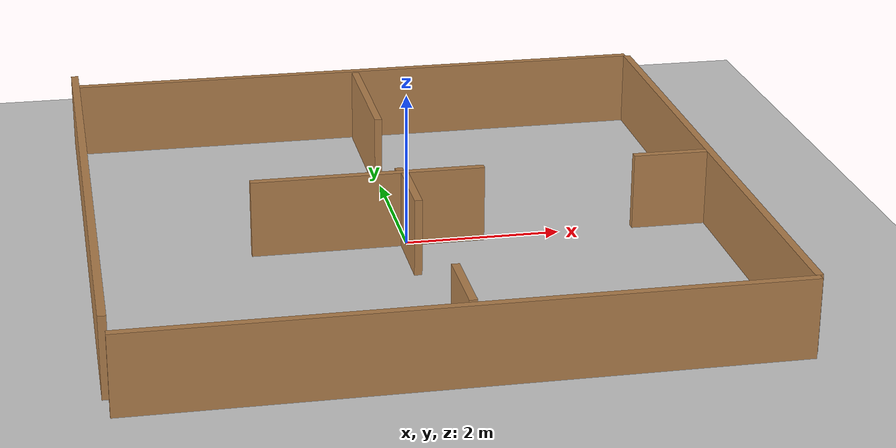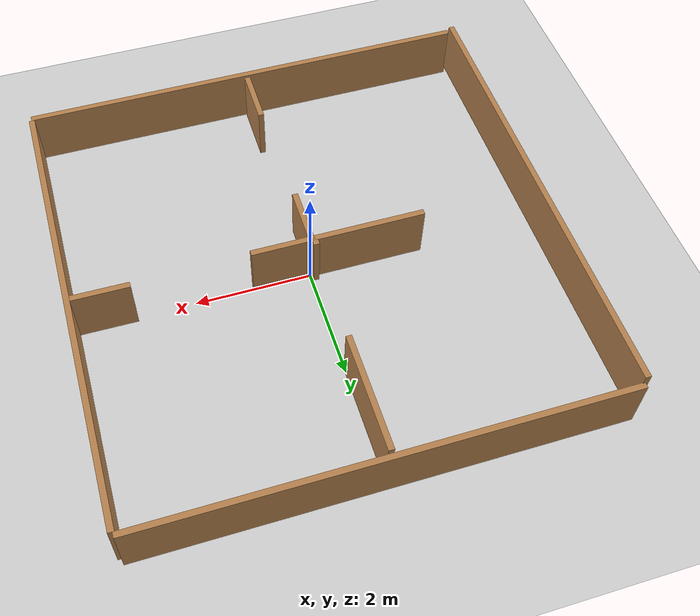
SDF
<sdf version="1.7">
 <world name="default">
  <plugin name="gazebo_ros_state" filename="libgazebo_ros_state.so"/>
  <light name="sun" type="directional">
   <pose>0 0 10 0 -0 0</pose>
   <diffuse>0.8 0.8 0.8 1</diffuse>
   <specular>0.2 0.2 0.2 1</specular>
   <attenuation>
    <range>1000</range>
    <constant>0.9</constant>
    <linear>0.01</linear>
    <quadratic>0.001</quadratic>
   </attenuation>
   <direction>-0.5 0.1 -0.9</direction>
   <spot><inner_angle>0</inner_angle><outer_angle>0</outer_angle><falloff>0</falloff></spot>
  </light>
  <model name="ground_plane">
   <static>1</static>
   <link name="link">
    <collision name="collision">
     <geometry><plane><normal>0 0 1</normal><size>100 100</size></plane></geometry>
     <surface><friction><ode><mu>100</mu><mu2>50</mu2></ode></friction></surface>
    </collision>
    <visual name="visual">
     <cast_shadows>0</cast_shadows>
     <geometry><plane><normal>0 0 1</normal><size>100 100</size></plane></geometry>
     <material>
      <script><uri>model://media/materials/scripts/gazebo.material</uri><name>Gazebo/Grey</name></script>
     </material>
    </visual>
   </link>
  </model>
  <gravity>0 0 -9.8</gravity>
  <magnetic_field>6e-06 2.3e-05 -4.2e-05</magnetic_field>
  <atmosphere type="adiabatic"/>
  <physics type="ode">
   <max_step_size>0.001</max_step_size>
   <real_time_factor>1</real_time_factor>
   <real_time_update_rate>1000</real_time_update_rate>
  </physics>
  <scene><ambient>0.4 0.4 0.4 1</ambient><background>0.7 0.7 0.7 1</background><shadows>1</shadows></scene>
  <spherical_coordinates>
   <surface_model>EARTH_WGS84</surface_model>
   <latitude_deg>0</latitude_deg>
   <longitude_deg>0</longitude_deg>
   <elevation>0</elevation>
   <heading_deg>0</heading_deg>
  </spherical_coordinates>
  <model name="wood_wall_h_mid_4x4">
   <link name="link">
    <pose>-0.834285 -0.35781 0.499994 0 -0 0.146415</pose>
    <inertial>
     <mass>0.5167</mass>
     <inertia>
      <ixx>0.00086117</ixx>
      <ixy>0</ixy>
      <ixz>0</ixz>
      <iyy>0.00086117</iyy>
      <iyz>0</iyz>
      <izz>0.00086117</izz>
     </inertia>
    </inertial>
    <visual name="visual">
     <geometry><box><size>3 0.1 1</size></box></geometry>
     <material>
      <script><uri>file://media/materials/scripts/gazebo.material</uri><name>Gazebo/Wood</name></script>
      <shader type="pixel"><normal_map>__default__</normal_map></shader>
      <ambient>1 1 1 1</ambient>
      <diffuse>1 1 1 1</diffuse>
      <specular>0.2 0.2 0.2 1</specular>
      <emissive>0 0 0 1</emissive>
     </material>
    </visual>
    <collision name="collision">
     <geometry><box><size>3 0.1 1</size></box></geometry>
     <surface>
      <friction>
       <ode><mu>1</mu><mu2>1</mu2><fdir1>0 0 0</fdir1><slip1>0</slip1><slip2>0</slip2></ode>
       <torsional>
        <coefficient>1</coefficient>
        <patch_radius>0</patch_radius>
        <surface_radius>0.01</surface_radius>
        <use_patch_radius>0</use_patch_radius>
        <ode><slip>0</slip></ode>
       </torsional>
      </friction>
      <bounce><restitution_coefficient>0</restitution_coefficient><threshold>1e+06</threshold></bounce>
      <contact>
       <collide_without_contact>0</collide_without_contact>
       <collide_without_contact_bitmask>1</collide_without_contact_bitmask>
       <collide_bitmask>1</collide_bitmask>
       <ode>
        <soft_cfm>0</soft_cfm>
        <soft_erp>0.2</soft_erp>
        <kp>100000</kp>
        <kd>100</kd>
        <max_vel>100</max_vel>
        <min_depth>0.001</min_depth>
       </ode>
       <bullet>
        <split_impulse>1</split_impulse>
        <split_impulse_penetration_threshold>-0.01</split_impulse_penetration_threshold>
        <soft_cfm>0</soft_cfm>
        <soft_erp>0.2</soft_erp>
        <kp>100000</kp>
        <kd>100</kd>
       </bullet>
      </contact>
     </surface>
    </collision>
   </link>
   <static>1</static>
   <pose>0.37664 0.205246 -0.001007 0 0 -0.146415</pose>
  </model>
  <model name="wood_wall_h_mid_clone_4x4">
   <link name="link">
    <pose>-4.83542 -0.924929 0.499994 0 -0 0.146418</pose>
    <inertial>
     <mass>0.5167</mass>
     <inertia>
      <ixx>0.00086117</ixx>
      <ixy>0</ixy>
      <ixz>0</ixz>
      <iyy>0.00086117</iyy>
      <iyz>0</iyz>
      <izz>0.00086117</izz>
     </inertia>
    </inertial>
    <visual name="visual">
     <geometry><box><size>1 0.1 1</size></box></geometry>
     <material>
      <script><uri>file://media/materials/scripts/gazebo.material</uri><name>Gazebo/Wood</name></script>
      <shader type="pixel"><normal_map>__default__</normal_map></shader>
      <ambient>1 1 1 1</ambient>
      <diffuse>1 1 1 1</diffuse>
      <specular>0.2 0.2 0.2 1</specular>
      <emissive>0 0 0 1</emissive>
     </material>
    </visual>
    <collision name="collision">
     <geometry><box><size>1 0.1 1</size></box></geometry>
     <surface>
      <friction>
       <ode><mu>1</mu><mu2>1</mu2><fdir1>0 0 0</fdir1><slip1>0</slip1><slip2>0</slip2></ode>
       <torsional>
        <coefficient>1</coefficient>
        <patch_radius>0</patch_radius>
        <surface_radius>0.01</surface_radius>
        <use_patch_radius>0</use_patch_radius>
        <ode><slip>0</slip></ode>
       </torsional>
      </friction>
      <bounce><restitution_coefficient>0</restitution_coefficient><threshold>1e+06</threshold></bounce>
      <contact>
       <collide_without_contact>0</collide_without_contact>
       <collide_without_contact_bitmask>1</collide_without_contact_bitmask>
       <collide_bitmask>1</collide_bitmask>
       <ode>
        <soft_cfm>0</soft_cfm>
        <soft_erp>0.2</soft_erp>
        <kp>100000</kp>
        <kd>100</kd>
        <max_vel>100</max_vel>
        <min_depth>0.001</min_depth>
       </ode>
       <bullet>
        <split_impulse>1</split_impulse>
        <split_impulse_penetration_threshold>-0.01</split_impulse_penetration_threshold>
        <soft_cfm>0</soft_cfm>
        <soft_erp>0.2</soft_erp>
        <kp>100000</kp>
        <kd>100</kd>
       </bullet>
      </contact>
     </surface>
    </collision>
   </link>
   <static>1</static>
   <pose>8.40479 0.180968 -0.001013 0 0 -0.155021</pose>
  </model>
  <model name="wood_wall_v_3_4x4">
   <link name="link">
    <pose>-9.60941 -0.0667 0.5 0 -0 0</pose>
    <inertial>
     <mass>0.5167</mass>
     <inertia>
      <ixx>0.00086117</ixx>
      <ixy>0</ixy>
      <ixz>0</ixz>
      <iyy>0.00086117</iyy>
      <iyz>0</iyz>
      <izz>0.00086117</izz>
     </inertia>
    </inertial>
    <visual name="visual">
     <geometry><box><size>1 0.1 1</size></box></geometry>
     <material>
      <script><uri>file://media/materials/scripts/gazebo.material</uri><name>Gazebo/Wood</name></script>
      <shader type="pixel"><normal_map>__default__</normal_map></shader>
      <ambient>1 1 1 1</ambient>
      <diffuse>1 1 1 1</diffuse>
      <specular>0.2 0.2 0.2 1</specular>
      <emissive>0 0 0 1</emissive>
     </material>
    </visual>
    <collision name="collision">
     <geometry><box><size>1 0.1 1</size></box></geometry>
     <surface>
      <friction>
       <ode><mu>1</mu><mu2>1</mu2><fdir1>0 0 0</fdir1><slip1>0</slip1><slip2>0</slip2></ode>
       <torsional>
        <coefficient>1</coefficient>
        <patch_radius>0</patch_radius>
        <surface_radius>0.01</surface_radius>
        <use_patch_radius>0</use_patch_radius>
        <ode><slip>0</slip></ode>
       </torsional>
      </friction>
      <bounce><restitution_coefficient>0</restitution_coefficient><threshold>1e+06</threshold></bounce>
      <contact>
       <collide_without_contact>0</collide_without_contact>
       <collide_without_contact_bitmask>1</collide_without_contact_bitmask>
       <collide_bitmask>1</collide_bitmask>
       <ode>
        <soft_cfm>0</soft_cfm>
        <soft_erp>0.2</soft_erp>
        <kp>100000</kp>
        <kd>100</kd>
        <max_vel>100</max_vel>
        <min_depth>0.001</min_depth>
       </ode>
       <bullet>
        <split_impulse>1</split_impulse>
        <split_impulse_penetration_threshold>-0.01</split_impulse_penetration_threshold>
        <soft_cfm>0</soft_cfm>
        <soft_erp>0.2</soft_erp>
        <kp>100000</kp>
        <kd>100</kd>
       </bullet>
      </contact>
     </surface>
    </collision>
   </link>
   <static>1</static>
   <pose>-0.004359 -10.1259 -0.001013 0 0 -1.57417</pose>
  </model>
  <model name="wood_wall_v_4_4x4">
   <link name="link">
    <pose>-11.6031 -0.066092 0.5 0 -0 0</pose>
    <inertial>
     <mass>0.5167</mass>
     <inertia>
      <ixx>0.00086117</ixx>
      <ixy>0</ixy>
      <ixz>0</ixz>
      <iyy>0.00086117</iyy>
      <iyz>0</iyz>
      <izz>0.00086117</izz>
     </inertia>
    </inertial>
    <visual name="visual">
     <geometry><box><size>1 0.1 1</size></box></geometry>
     <material>
      <script><uri>file://media/materials/scripts/gazebo.material</uri><name>Gazebo/Wood</name></script>
      <shader type="pixel"><normal_map>__default__</normal_map></shader>
      <ambient>1 1 1 1</ambient>
      <diffuse>1 1 1 1</diffuse>
      <specular>0.2 0.2 0.2 1</specular>
      <emissive>0 0 0 1</emissive>
     </material>
    </visual>
    <collision name="collision">
     <geometry><box><size>1 0.1 1</size></box></geometry>
     <surface>
      <friction>
       <ode><mu>1</mu><mu2>1</mu2><fdir1>0 0 0</fdir1><slip1>0</slip1><slip2>0</slip2></ode>
       <torsional>
        <coefficient>1</coefficient>
        <patch_radius>0</patch_radius>
        <surface_radius>0.01</surface_radius>
        <use_patch_radius>0</use_patch_radius>
        <ode><slip>0</slip></ode>
       </torsional>
      </friction>
      <bounce><restitution_coefficient>0</restitution_coefficient><threshold>1e+06</threshold></bounce>
      <contact>
       <collide_without_contact>0</collide_without_contact>
       <collide_without_contact_bitmask>1</collide_without_contact_bitmask>
       <collide_bitmask>1</collide_bitmask>
       <ode>
        <soft_cfm>0</soft_cfm>
        <soft_erp>0.2</soft_erp>
        <kp>100000</kp>
        <kd>100</kd>
        <max_vel>100</max_vel>
        <min_depth>0.001</min_depth>
       </ode>
       <bullet>
        <split_impulse>1</split_impulse>
        <split_impulse_penetration_threshold>-0.01</split_impulse_penetration_threshold>
        <soft_cfm>0</soft_cfm>
        <soft_erp>0.2</soft_erp>
        <kp>100000</kp>
        <kd>100</kd>
       </bullet>
      </contact>
     </surface>
    </collision>
   </link>
   <static>1</static>
   <pose>0.044006 -15.0765 -0.001013 0 0 -1.57417</pose>
  </model>
  <model name="wood_wall_v_2_4x4">
   <link name="link">
    <pose>-6.12538 -0.06609 0.5 0 -0 0</pose>
    <inertial>
     <mass>0.5167</mass>
     <inertia>
      <ixx>0.00086117</ixx>
      <ixy>0</ixy>
      <ixz>0</ixz>
      <iyy>0.00086117</iyy>
      <iyz>0</iyz>
      <izz>0.00086117</izz>
     </inertia>
    </inertial>
    <visual name="visual">
     <geometry><box><size>0.1 0.1 1</size></box></geometry>
     <material>
      <script><uri>file://media/materials/scripts/gazebo.material</uri><name>Gazebo/Wood</name></script>
      <shader type="pixel"><normal_map>__default__</normal_map></shader>
      <ambient>1 1 1 1</ambient>
      <diffuse>1 1 1 1</diffuse>
      <specular>0.2 0.2 0.2 1</specular>
      <emissive>0 0 0 1</emissive>
     </material>
    </visual>
    <collision name="collision">
     <geometry><box><size>0.1 0.1 1</size></box></geometry>
     <surface>
      <friction>
       <ode><mu>1</mu><mu2>1</mu2><fdir1>0 0 0</fdir1><slip1>0</slip1><slip2>0</slip2></ode>
       <torsional>
        <coefficient>1</coefficient>
        <patch_radius>0</patch_radius>
        <surface_radius>0.01</surface_radius>
        <use_patch_radius>0</use_patch_radius>
        <ode><slip>0</slip></ode>
       </torsional>
      </friction>
      <bounce><restitution_coefficient>0</restitution_coefficient><threshold>1e+06</threshold></bounce>
      <contact>
       <collide_without_contact>0</collide_without_contact>
       <collide_without_contact_bitmask>1</collide_without_contact_bitmask>
       <collide_bitmask>1</collide_bitmask>
       <ode>
        <soft_cfm>0</soft_cfm>
        <soft_erp>0.2</soft_erp>
        <kp>100000</kp>
        <kd>100</kd>
        <max_vel>100</max_vel>
        <min_depth>0.001</min_depth>
       </ode>
       <bullet>
        <split_impulse>1</split_impulse>
        <split_impulse_penetration_threshold>-0.01</split_impulse_penetration_threshold>
        <soft_cfm>0</soft_cfm>
        <soft_erp>0.2</soft_erp>
        <kp>100000</kp>
        <kd>100</kd>
       </bullet>
      </contact>
     </surface>
    </collision>
   </link>
   <static>1</static>
   <pose>-0.038415 -6.06315 -0.001013 0 0 -1.57417</pose>
  </model>
  <model name="wood_wall_v_1_4x4">
   <link name="link">
    <pose>-4.02779 -0.066095 0.5 0 -0 0</pose>
    <inertial>
     <mass>0.5167</mass>
     <inertia>
      <ixx>0.00086117</ixx>
      <ixy>0</ixy>
      <ixz>0</ixz>
      <iyy>0.00086117</iyy>
      <iyz>0</iyz>
      <izz>0.00086117</izz>
     </inertia>
    </inertial>
    <visual name="visual">
     <geometry><box><size>2 0.1 1</size></box></geometry>
     <material>
      <script><uri>file://media/materials/scripts/gazebo.material</uri><name>Gazebo/Wood</name></script>
      <shader type="pixel"><normal_map>__default__</normal_map></shader>
      <ambient>1 1 1 1</ambient>
      <diffuse>1 1 1 1</diffuse>
      <specular>0.2 0.2 0.2 1</specular>
      <emissive>0 0 0 1</emissive>
     </material>
    </visual>
    <collision name="collision">
     <geometry><box><size>2 0.1 1</size></box></geometry>
     <surface>
      <friction>
       <ode><mu>1</mu><mu2>1</mu2><fdir1>0 0 0</fdir1><slip1>0</slip1><slip2>0</slip2></ode>
       <torsional>
        <coefficient>1</coefficient>
        <patch_radius>0</patch_radius>
        <surface_radius>0.01</surface_radius>
        <use_patch_radius>0</use_patch_radius>
        <ode><slip>0</slip></ode>
       </torsional>
      </friction>
      <bounce><restitution_coefficient>0</restitution_coefficient><threshold>1e+06</threshold></bounce>
      <contact>
       <collide_without_contact>0</collide_without_contact>
       <collide_without_contact_bitmask>1</collide_without_contact_bitmask>
       <collide_bitmask>1</collide_bitmask>
       <ode>
        <soft_cfm>0</soft_cfm>
        <soft_erp>0.2</soft_erp>
        <kp>100000</kp>
        <kd>100</kd>
        <max_vel>100</max_vel>
        <min_depth>0.001</min_depth>
       </ode>
       <bullet>
        <split_impulse>1</split_impulse>
        <split_impulse_penetration_threshold>-0.01</split_impulse_penetration_threshold>
        <soft_cfm>0</soft_cfm>
        <soft_erp>0.2</soft_erp>
        <kp>100000</kp>
        <kd>100</kd>
       </bullet>
      </contact>
     </surface>
    </collision>
   </link>
   <static>1</static>
   <pose>0.020397 -1.09665 -0.001013 0 0 -1.57417</pose>
  </model>
  <model name="wood_wall_h_top_4x4">
   <link name="link">
    <pose>-1 -4.00348 0.5 0 -0 0</pose>
    <inertial>
     <mass>0.5167</mass>
     <inertia>
      <ixx>0.00086117</ixx>
      <ixy>0</ixy>
      <ixz>0</ixz>
      <iyy>0.00086117</iyy>
      <iyz>0</iyz>
      <izz>0.00086117</izz>
     </inertia>
    </inertial>
    <visual name="visual">
     <geometry><box><size>8 0.1 1</size></box></geometry>
     <material>
      <script><uri>file://media/materials/scripts/gazebo.material</uri><name>Gazebo/Wood</name></script>
      <shader type="pixel"><normal_map>__default__</normal_map></shader>
      <ambient>1 1 1 1</ambient>
      <diffuse>1 1 1 1</diffuse>
      <specular>0.2 0.2 0.2 1</specular>
      <emissive>0 0 0 1</emissive>
     </material>
    </visual>
    <collision name="collision">
     <geometry><box><size>8 0.1 1</size></box></geometry>
     <surface>
      <friction>
       <ode><mu>1</mu><mu2>1</mu2><fdir1>0 0 0</fdir1><slip1>0</slip1><slip2>0</slip2></ode>
       <torsional>
        <coefficient>1</coefficient>
        <patch_radius>0</patch_radius>
        <surface_radius>0.01</surface_radius>
        <use_patch_radius>0</use_patch_radius>
        <ode><slip>0</slip></ode>
       </torsional>
      </friction>
      <bounce><restitution_coefficient>0</restitution_coefficient><threshold>1e+06</threshold></bounce>
      <contact>
       <collide_without_contact>0</collide_without_contact>
       <collide_without_contact_bitmask>1</collide_without_contact_bitmask>
       <collide_bitmask>1</collide_bitmask>
       <ode>
        <soft_cfm>0</soft_cfm>
        <soft_erp>0.2</soft_erp>
        <kp>100000</kp>
        <kd>100</kd>
        <max_vel>100</max_vel>
        <min_depth>0.001</min_depth>
       </ode>
       <bullet>
        <split_impulse>1</split_impulse>
        <split_impulse_penetration_threshold>-0.01</split_impulse_penetration_threshold>
        <soft_cfm>0</soft_cfm>
        <soft_erp>0.2</soft_erp>
        <kp>100000</kp>
        <kd>100</kd>
       </bullet>
      </contact>
     </surface>
    </collision>
   </link>
   <static>1</static>
   <pose>1.00024 8.03189 -0.001013 0 -0 0</pose>
  </model>
  <model name="wood_wall_h_bottom_4x4">
   <link name="link">
    <pose>-1 3.81388 0.5 0 -0 0</pose>
    <inertial>
     <mass>0.5167</mass>
     <inertia>
      <ixx>0.00086117</ixx>
      <ixy>0</ixy>
      <ixz>0</ixz>
      <iyy>0.00086117</iyy>
      <iyz>0</iyz>
      <izz>0.00086117</izz>
     </inertia>
    </inertial>
    <visual name="visual">
     <geometry><box><size>8 0.1 1</size></box></geometry>
     <material>
      <script><uri>file://media/materials/scripts/gazebo.material</uri><name>Gazebo/Wood</name></script>
      <shader type="pixel"><normal_map>__default__</normal_map></shader>
      <ambient>1 1 1 1</ambient>
      <diffuse>1 1 1 1</diffuse>
      <specular>0.2 0.2 0.2 1</specular>
      <emissive>0 0 0 1</emissive>
     </material>
    </visual>
    <collision name="collision">
     <geometry><box><size>8 0.1 1</size></box></geometry>
     <surface>
      <friction>
       <ode><mu>1</mu><mu2>1</mu2><fdir1>0 0 0</fdir1><slip1>0</slip1><slip2>0</slip2></ode>
       <torsional>
        <coefficient>1</coefficient>
        <patch_radius>0</patch_radius>
        <surface_radius>0.01</surface_radius>
        <use_patch_radius>0</use_patch_radius>
        <ode><slip>0</slip></ode>
       </torsional>
      </friction>
      <bounce><restitution_coefficient>0</restitution_coefficient><threshold>1e+06</threshold></bounce>
      <contact>
       <collide_without_contact>0</collide_without_contact>
       <collide_without_contact_bitmask>1</collide_without_contact_bitmask>
       <collide_bitmask>1</collide_bitmask>
       <ode>
        <soft_cfm>0</soft_cfm>
        <soft_erp>0.2</soft_erp>
        <kp>100000</kp>
        <kd>100</kd>
        <max_vel>100</max_vel>
        <min_depth>0.001</min_depth>
       </ode>
       <bullet>
        <split_impulse>1</split_impulse>
        <split_impulse_penetration_threshold>-0.01</split_impulse_penetration_threshold>
        <soft_cfm>0</soft_cfm>
        <soft_erp>0.2</soft_erp>
        <kp>100000</kp>
        <kd>100</kd>
       </bullet>
      </contact>
     </surface>
    </collision>
   </link>
   <static>1</static>
   <pose>0.995856 -7.88728 -0.001013 0 -0 0</pose>
  </model>
  <model name="wood_wall_v_right_4x4">
   <link name="link">
    <pose>-1 -4.07928 0.5 0 -0 0</pose>
    <inertial>
     <mass>0.5167</mass>
     <inertia>
      <ixx>0.00086117</ixx>
      <ixy>0</ixy>
      <ixz>0</ixz>
      <iyy>0.00086117</iyy>
      <iyz>0</iyz>
      <izz>0.00086117</izz>
     </inertia>
    </inertial>
    <visual name="visual">
     <geometry><box><size>8 0.1 1</size></box></geometry>
     <material>
      <script><uri>file://media/materials/scripts/gazebo.material</uri><name>Gazebo/Wood</name></script>
      <shader type="pixel"><normal_map>__default__</normal_map></shader>
      <ambient>1 1 1 1</ambient>
      <diffuse>1 1 1 1</diffuse>
      <specular>0.2 0.2 0.2 1</specular>
      <emissive>0 0 0 1</emissive>
     </material>
    </visual>
    <collision name="collision">
     <geometry><box><size>8 0.1 1</size></box></geometry>
     <surface>
      <friction>
       <ode><mu>1</mu><mu2>1</mu2><fdir1>0 0 0</fdir1><slip1>0</slip1><slip2>0</slip2></ode>
       <torsional>
        <coefficient>1</coefficient>
        <patch_radius>0</patch_radius>
        <surface_radius>0.01</surface_radius>
        <use_patch_radius>0</use_patch_radius>
        <ode><slip>0</slip></ode>
       </torsional>
      </friction>
      <bounce><restitution_coefficient>0</restitution_coefficient><threshold>1e+06</threshold></bounce>
      <contact>
       <collide_without_contact>0</collide_without_contact>
       <collide_without_contact_bitmask>1</collide_without_contact_bitmask>
       <collide_bitmask>1</collide_bitmask>
       <ode>
        <soft_cfm>0</soft_cfm>
        <soft_erp>0.2</soft_erp>
        <kp>100000</kp>
        <kd>100</kd>
        <max_vel>100</max_vel>
        <min_depth>0.001</min_depth>
       </ode>
       <bullet>
        <split_impulse>1</split_impulse>
        <split_impulse_penetration_threshold>-0.01</split_impulse_penetration_threshold>
        <soft_cfm>0</soft_cfm>
        <soft_erp>0.2</soft_erp>
        <kp>100000</kp>
        <kd>100</kd>
       </bullet>
      </contact>
     </surface>
    </collision>
   </link>
   <static>1</static>
   <pose>8.08185 -1.03408 -0.001013 0 0 -1.57417</pose>
  </model>
  <model name="wood_wall_v_left_4x4">
   <link name="link">
    <pose>-14.6247 3.98162 2.03089 -0.090342 0.377552 -0.022301</pose>
    <inertial>
     <mass>0.5167</mass>
     <inertia>
      <ixx>0.00086117</ixx>
      <ixy>0</ixy>
      <ixz>0</ixz>
      <iyy>0.00086117</iyy>
      <iyz>0</iyz>
      <izz>0.00086117</izz>
     </inertia>
    </inertial>
    <visual name="visual">
     <geometry><box><size>8 0.1 1</size></box></geometry>
     <material>
      <script><uri>file://media/materials/scripts/gazebo.material</uri><name>Gazebo/Wood</name></script>
      <shader type="pixel"><normal_map>__default__</normal_map></shader>
      <ambient>1 1 1 1</ambient>
      <diffuse>1 1 1 1</diffuse>
      <specular>0.2 0.2 0.2 1</specular>
      <emissive>0 0 0 1</emissive>
     </material>
    </visual>
    <collision name="collision">
     <geometry><box><size>8 0.1 1</size></box></geometry>
     <surface>
      <friction>
       <ode><mu>1</mu><mu2>1</mu2><fdir1>0 0 0</fdir1><slip1>0</slip1><slip2>0</slip2></ode>
       <torsional>
        <coefficient>1</coefficient>
        <patch_radius>0</patch_radius>
        <surface_radius>0.01</surface_radius>
        <use_patch_radius>0</use_patch_radius>
        <ode><slip>0</slip></ode>
       </torsional>
      </friction>
      <bounce><restitution_coefficient>0</restitution_coefficient><threshold>1e+06</threshold></bounce>
      <contact>
       <collide_without_contact>0</collide_without_contact>
       <collide_without_contact_bitmask>1</collide_without_contact_bitmask>
       <collide_bitmask>1</collide_bitmask>
       <ode>
        <soft_cfm>0</soft_cfm>
        <soft_erp>0.2</soft_erp>
        <kp>100000</kp>
        <kd>100</kd>
        <max_vel>100</max_vel>
        <min_depth>0.001</min_depth>
       </ode>
       <bullet>
        <split_impulse>1</split_impulse>
        <split_impulse_penetration_threshold>-0.01</split_impulse_penetration_threshold>
        <soft_cfm>0</soft_cfm>
        <soft_erp>0.2</soft_erp>
        <kp>100000</kp>
        <kd>100</kd>
       </bullet>
      </contact>
     </surface>
    </collision>
   </link>
   <static>1</static>
   <pose>-8.02424 -14.4164 3.8558 0.088354 -0.378001 -1.58605</pose>
  </model>
 </world>
</sdf>
